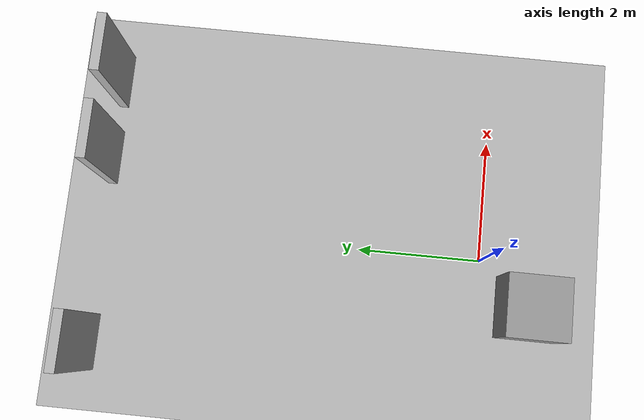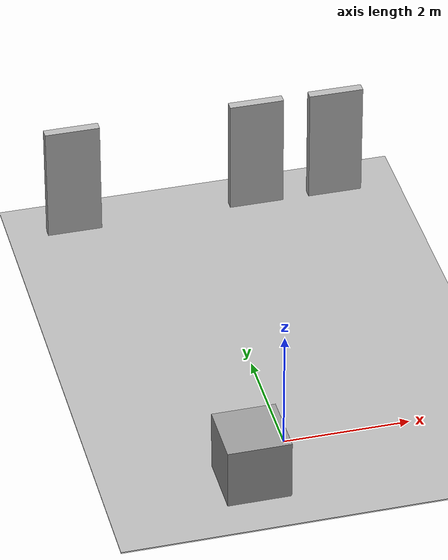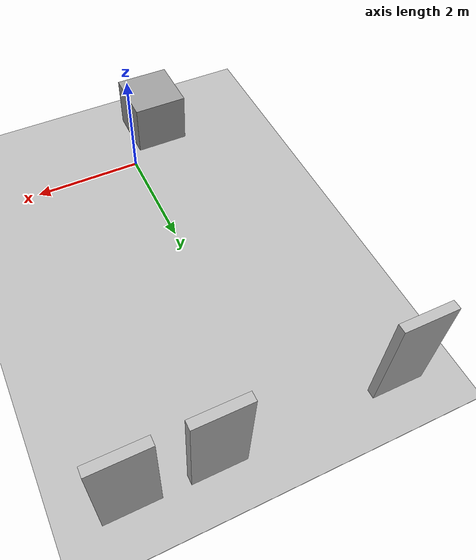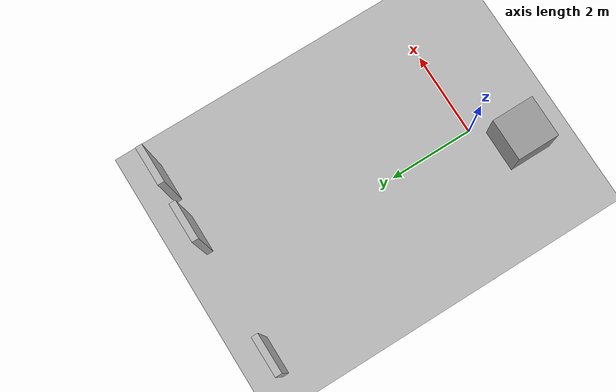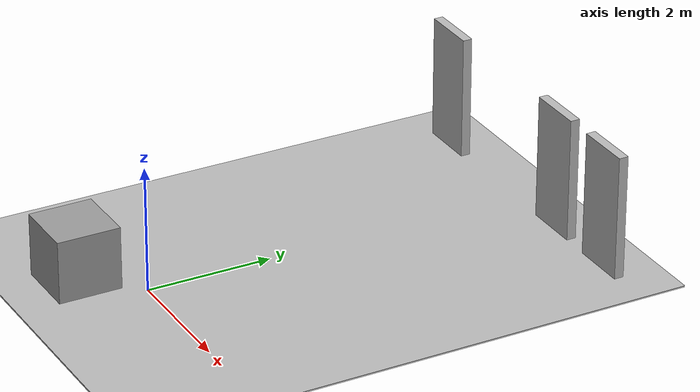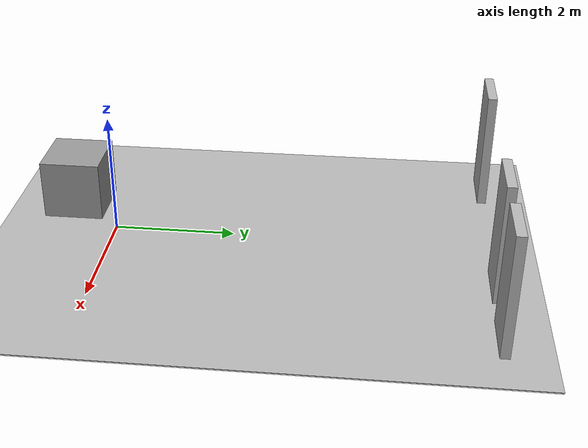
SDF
<sdf version="1.7">
 <world name="default">
  <model name="ground_plane">
   <static>1</static>
   <link name="link">
    <collision name="collision">
     <geometry><plane><normal>0 0 1</normal><size>100 100</size></plane></geometry>
     <surface>
      <contact><collide_bitmask>65535</collide_bitmask></contact>
      <friction><ode><mu>100</mu><mu2>50</mu2></ode></friction>
     </surface>
    </collision>
    <visual name="visual">
     <cast_shadows>0</cast_shadows>
     <geometry><plane><normal>0 0 1</normal><size>100 100</size></plane></geometry>
     <material>
      <script><uri>file://media/materials/scripts/gazebo.material</uri><name>Gazebo/Grey</name></script>
     </material>
    </visual>
   </link>
  </model>
  <model name="door">
   <link name="link_0">
    <visual name="visual">
     <pose>0 0 1 0 -0 0</pose>
     <geometry><box><size>0.9 0.15 2</size></box></geometry>
     <material>
      <script>
       <uri>model://door/materials/scripts</uri>
       <uri>model://door/materials/textures</uri>
       <name>door</name>
      </script>
     </material>
    </visual>
    <collision name="collision">
     <pose>0 0 1 0 -0 0</pose>
     <geometry><box><size>0.9 0.15 2</size></box></geometry>
    </collision>
   </link>
   <static>1</static>
   <pose>1.16109 6.22175 0 0 -0 0</pose>
  </model>
  <model name="door_0">
   <link name="link_0">
    <visual name="visual">
     <pose>0 0 1 0 -0 0</pose>
     <geometry><box><size>0.9 0.15 2</size></box></geometry>
     <material>
      <script>
       <uri>model://door/materials/scripts</uri>
       <uri>model://door/materials/textures</uri>
       <name>door</name>
      </script>
     </material>
    </visual>
    <collision name="collision">
     <pose>0 0 1 0 -0 0</pose>
     <geometry><box><size>0.9 0.15 2</size></box></geometry>
    </collision>
   </link>
   <static>1</static>
   <pose>2.49922 6.21574 0 0 -0 0</pose>
  </model>
  <model name="door_1">
   <link name="link_0">
    <visual name="visual">
     <pose>0 0 1 0 -0 0</pose>
     <geometry><box><size>0.9 0.15 2</size></box></geometry>
     <material>
      <script>
       <uri>model://door/materials/scripts</uri>
       <uri>model://door/materials/textures</uri>
       <name>door</name>
      </script>
     </material>
    </visual>
    <collision name="collision">
     <pose>0 0 1 0 -0 0</pose>
     <geometry><box><size>0.9 0.15 2</size></box></geometry>
    </collision>
   </link>
   <static>1</static>
   <pose>-1.92171 6.19208 0 0 -0 0</pose>
  </model>
  <model name="unit_box">
   <pose>-0.722634 -0.804299 0.515 0 0 -3.5e-05</pose>
   <link name="link">
    <inertial>
     <mass>1</mass>
     <inertia>
      <ixx>0.166667</ixx>
      <ixy>0</ixy>
      <ixz>0</ixz>
      <iyy>0.166667</iyy>
      <iyz>0</iyz>
      <izz>0.166667</izz>
     </inertia>
    </inertial>
    <collision name="collision"><geometry><box><size>1 0.999997 1</size></box></geometry></collision>
    <visual name="visual">
     <geometry><box><size>1 0.999997 1</size></box></geometry>
     <material>
      <script><name>Gazebo/Grey</name><uri>file://media/materials/scripts/gazebo.material</uri></script>
     </material>
    </visual>
   </link>
  </model>
  <model name="Floor">
   <link name="main">
    <pose>0 0 0.01 0 -0 0</pose>
    <collision name="main_Collision"><geometry><box><size>40 40 0.01</size></box></geometry></collision>
    <visual name="main_Visual">
     <geometry><box><size>40 40 0.01</size></box></geometry>
     <material>
      <script>
       <uri>model://Floor/materials/scripts</uri>
       <uri>model://Floor/materials/textures</uri>
       <name>floor</name>
      </script>
     </material>
    </visual>
   </link>
   <static>1</static>
   <pose>10.2498 7.84842 0 0 -0 0</pose>
  </model>
 </world>
</sdf>
